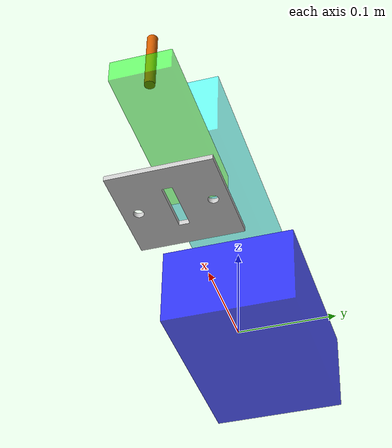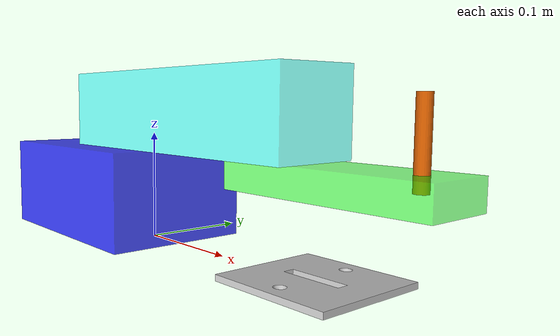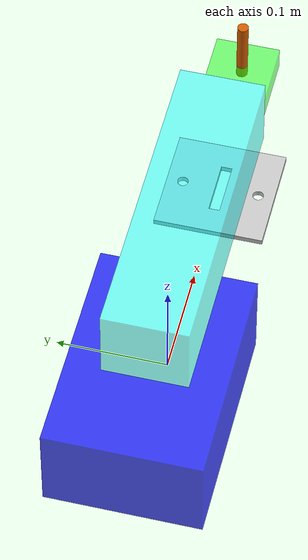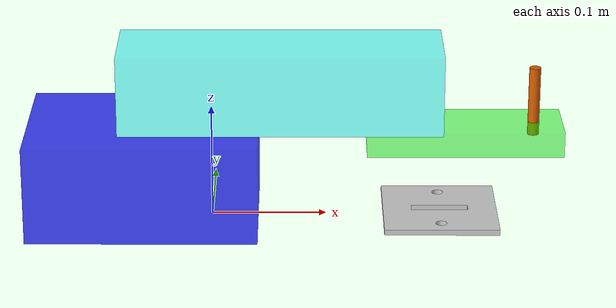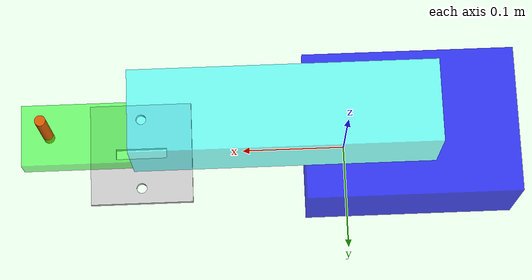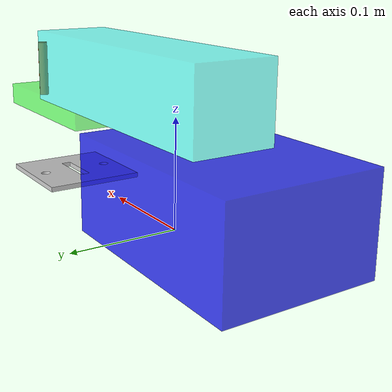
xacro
<?xml version='1.0'?>
<robot xmlns:xacro="http://www.ros.org/wiki/xacro" name="ms2r">

    <!--Propiedades-->
    <xacro:property name="rescale" value="${1000}" />

    <xacro:property name="r1" value="${160/rescale}" />
    <xacro:property name="r2" value="${120/rescale}" />

    <xacro:property name="base_x" value="${200/rescale}" />
    <xacro:property name="base_y" value="${139/rescale}" />
    <xacro:property name="base_z" value="${86.5/rescale}" />
    <xacro:property name="off_edge_base_arm1" value="${40.4/rescale}" />

    <xacro:property name="arm_1_x" value="${280.15/rescale}" />
    <xacro:property name="arm_1_y" value="${76/rescale}" />
    <xacro:property name="arm_1_z" value="${71/rescale}" />
    <xacro:property name="off_edge_center_arm1" value="${80.15/rescale}" />

    <xacro:property name="arm_2_x" value="${170/rescale}" />
    <xacro:property name="arm_2_y" value="${58/rescale}" />
    <xacro:property name="arm_2_z" value="${22.7/rescale}" />
    <xacro:property name="off_edge_center_arm2" value="${25/rescale}" />

    <xacro:property name="prism_len" value="${60.85/rescale}" />
    <xacro:property name="prism_r" value="${5/rescale}" />
    <xacro:property name="off_edge_prism_arm2" value="${23/rescale}" />

    <xacro:property name="upper_limit_angular_arm_1" value="${pi/2}" />
    <xacro:property name="lower_limit_angular_arm_1" value="${pi/2}" />

    <xacro:property name="upper_limit_angular_arm_2" value="${2*pi/3}" />
    <xacro:property name="lower_limit_angular_arm_2" value="${2*pi/3}" />

    <xacro:property name="upper_limit_linear" value="${0}" />
    <xacro:property name="lower_limit_linear" value="-${prism_len+arm_2_z/2}" />

    <!-- arm_2_prismatic_joint, la longitud sin escalar del prismatico es 72.2 -->

    <xacro:property name="piece_scale" value="${0.001}" />

    <!-- Macro para visualizar mallas STL, permite especificar el path, origen y escala -->
    <xacro:macro name="mesh_visual_macro" params="mesh_path color_name r g b a xyz_offset rpy_offset scale">
        <visual>
            <origin xyz="${xyz_offset}" rpy="${rpy_offset}"/>
            <geometry>
                <mesh filename="package://ms2r1p/meshes/${mesh_path}" scale="${scale/10} ${scale/10} ${scale/10}"/>
            </geometry>
            <material name="${color_name}">
                <color rgba="${r} ${g} ${b} ${a}"/>
            </material>
        </visual>
    </xacro:macro>

     <!--Macros-->

    <xacro:macro name="arm_macro" params="p_name p_x p_y p_length_z offset mat_name r g b a">
        <link name="${p_name}">
            <visual>
                <geometry>
                    <box size="${p_x} ${p_y} ${p_length_z}"/>
                </geometry>
                <material name="${mat_name}">
                    <color rgba="${r} ${g} ${b} ${a}"/>
                </material>
                <origin xyz="${p_x/2-offset} 0 0" rpy="0 0 0"/>
            </visual>

            <inertial>
                <mass value="1"/>
                <origin xyz="0 0 0" rpy="0 0 0"/>
                <inertia ixx="1" ixy="0" ixz="0" iyy="1" iyz="0" izz="1"/>
            </inertial>

            <collision>
                <geometry>
                    <box size="${p_x} ${p_y} ${p_length_z}"/>
                </geometry>
                <origin xyz="${p_x/2} 0 0" rpy="0 0 0"/>
            </collision>
        </link>
    </xacro:macro>

<!--Estructura robot-->
        <!--Estructura robot-->
    <link name="base_link">
    </link>

    <!-- LINK BASE_LINK: Usamos la malla STL aquí -->
    <link name="traj_shape_link">

        <xacro:mesh_visual_macro
            mesh_path="traj_shape_amg.stl"
            color_name="base_color"
            r="0.8" g="0.8" b="0.8" a="1.0"
            xyz_offset="0 0 0"
            rpy_offset="0 0 0"
            scale="${piece_scale}"
        />

        <inertial>
            <mass value="1"/>
            <origin xyz="0 0 0" rpy="0 0 0"/>
            <inertia ixx="1" ixy="0" ixz="0" iyy="1" iyz="0" izz="1"/>
        </inertial>
    </link>

    <joint name="base_shape_joint" type="fixed">
        <parent link="base_link"/>
        <child link="traj_shape_link"/>
        <origin xyz="0 0 0" rpy="0 0 0"/>
    </joint>

    <joint name="base_base_1_joint" type="fixed">
        <parent link="base_link"/>
        <child link="base_1_link"/>
        <origin xyz="-${base_x/2-off_edge_base_arm1} 0 ${base_z/2}" rpy="0 0 0"/>
    </joint>

   <link name="base_1_link">
        <visual>
            <origin xyz="0 0 0" rpy="0 0 0"/>
            <geometry>
            <box size="${base_x} ${base_y} ${base_z}"/>
            </geometry>
            <material name="blue">
                <color rgba="0 0 1 0.75"/>
            </material>
        </visual>
    </link>

    <joint name="base_to_arm1" type="revolute">
        <parent link="base_link"/>
        <child link="arm_1_link"/>
        <origin xyz="0 0 ${base_z+arm_1_z/2}" rpy="0 0 0"/>
        <axis xyz="0 0 1"/> <!-- rotación vertical -->
        <limit effort="1" lower="-${lower_limit_angular_arm_1}" upper="${upper_limit_angular_arm_1}" velocity="1"/>
    </joint>

    <xacro:arm_macro p_name = "arm_1_link"
                       p_x = "${arm_1_x}"
                       p_y ="${arm_1_y}"
                       p_length_z="${arm_1_z}"
                       offset = "${off_edge_center_arm1}"
                       mat_name = "cian"
                       r = "${0}"
                       g = "${1}"
                       b = "${1}"
                       a = "${0.5}"/>

    <joint name="arm_1_arm_2_joint" type="revolute">
        <parent link="arm_1_link"/>
        <child link="arm_2_link"/>
        <origin xyz="${r1} 0 -${arm_1_z/2+arm_2_z/2}" rpy="0 0 0"/>
        <axis xyz="0 0 1"/>
        <limit effort="1" lower="-${lower_limit_angular_arm_2}" upper="${upper_limit_angular_arm_2}" velocity="1"/>
        <dynamics damping="1" friction="1"/>
    </joint>

    <xacro:arm_macro p_name = "arm_2_link"
                    p_x = "${arm_2_x}"
                    p_y ="${arm_2_y}"
                    p_length_z="${arm_2_z}"
                    offset = "${off_edge_center_arm2}"
                    mat_name = "green"
                    r = "0"
                    g = "1"
                    b = "0"
                    a = "0.5"/>

    <joint name="arm_2_prismatic_joint" type="prismatic">
        <parent link="arm_2_link"/>
        <child link="prismatic_link"/>
        <origin xyz="${r2} 0 0" rpy="0 0 0"/>
        <axis xyz="0 0 1"/>
        <limit effort="1" lower="${lower_limit_linear}" upper="${upper_limit_linear}" velocity="1"/>
        <dynamics damping="1" friction="1"/>
    </joint>

    <link name="prismatic_link">
        <visual>
            <geometry>
                <cylinder radius="${prism_r}" length="${prism_len}"/>

            </geometry>
            <origin xyz="0 0 ${prism_len/2}" rpy="0 0 0"/>
        </visual>
        <inertial>
                <mass value="1"/>
                <origin xyz="0 0 ${prism_len/2}" rpy="0 0 0"/>
                <inertia ixx="1" ixy="0" ixz="0" iyy="1" iyz="0" izz="1"/>
            </inertial>

            <collision>
                <geometry>
                   <cylinder radius="${prism_r}" length="${prism_len}"/>
                </geometry>
                <origin xyz="0 0 ${prism_len/2}" rpy="0 0 0"/>
            </collision>
    </link>

</robot>
